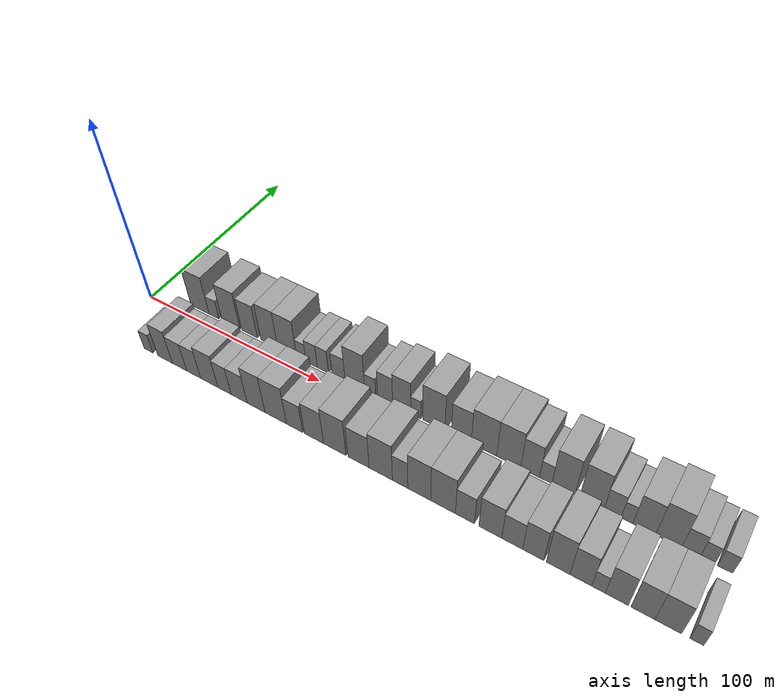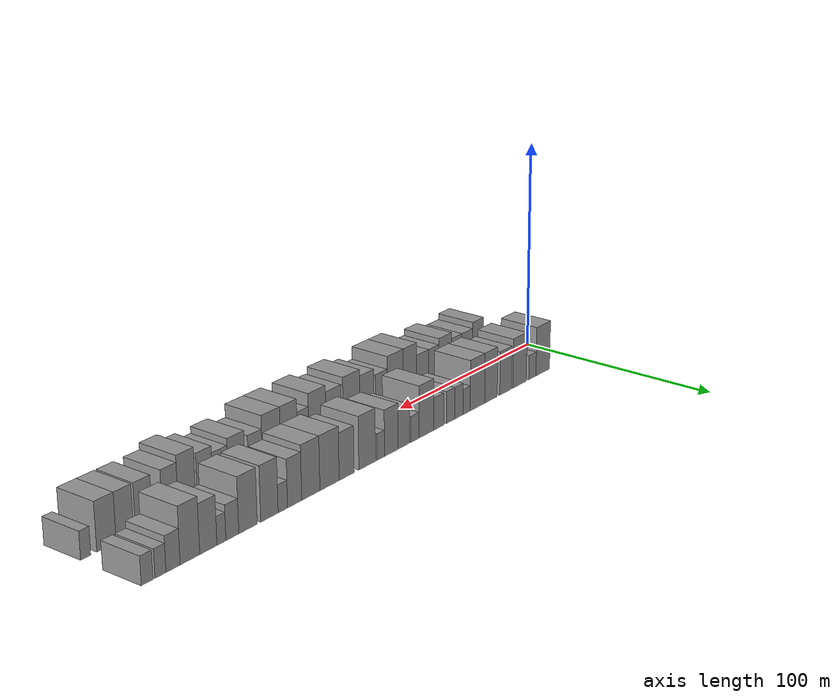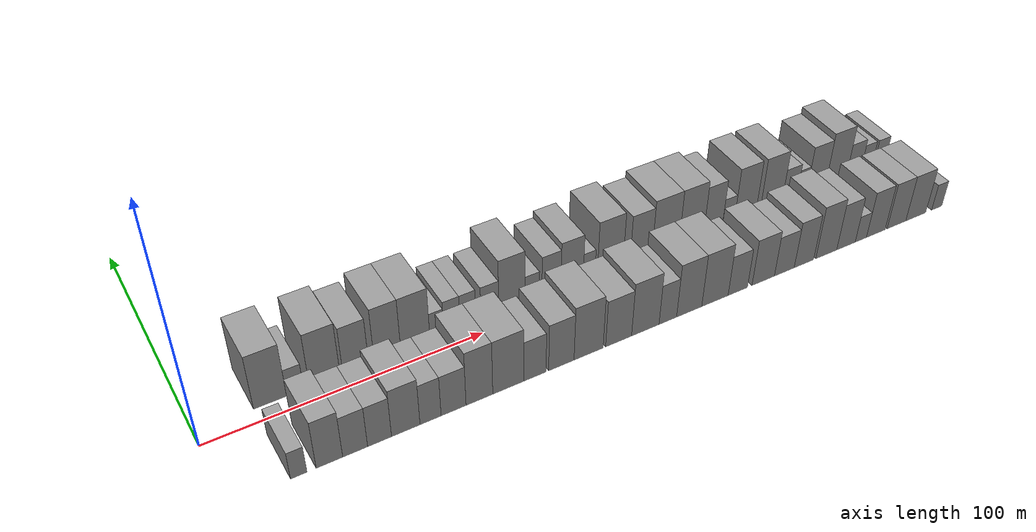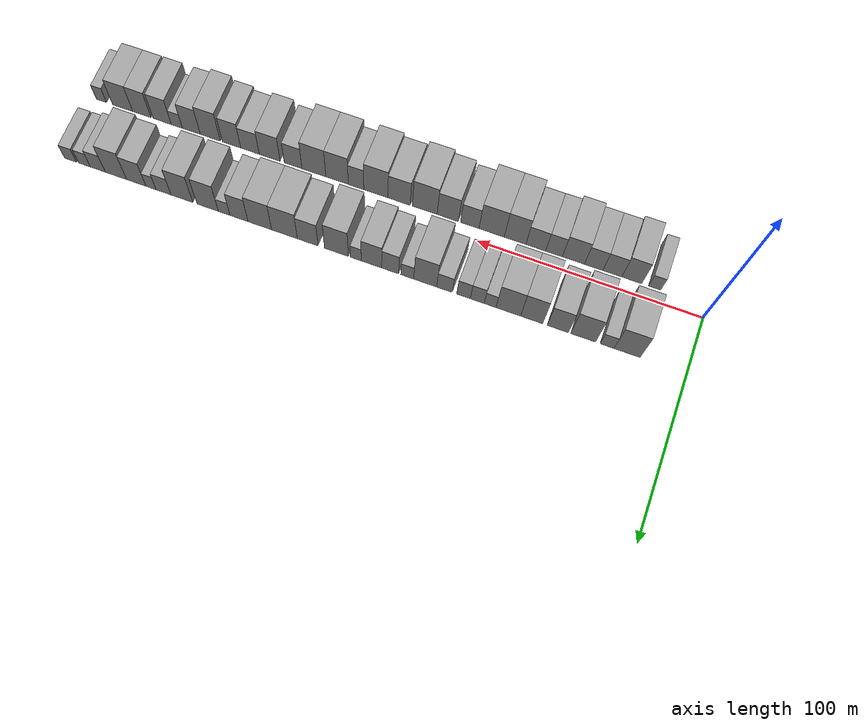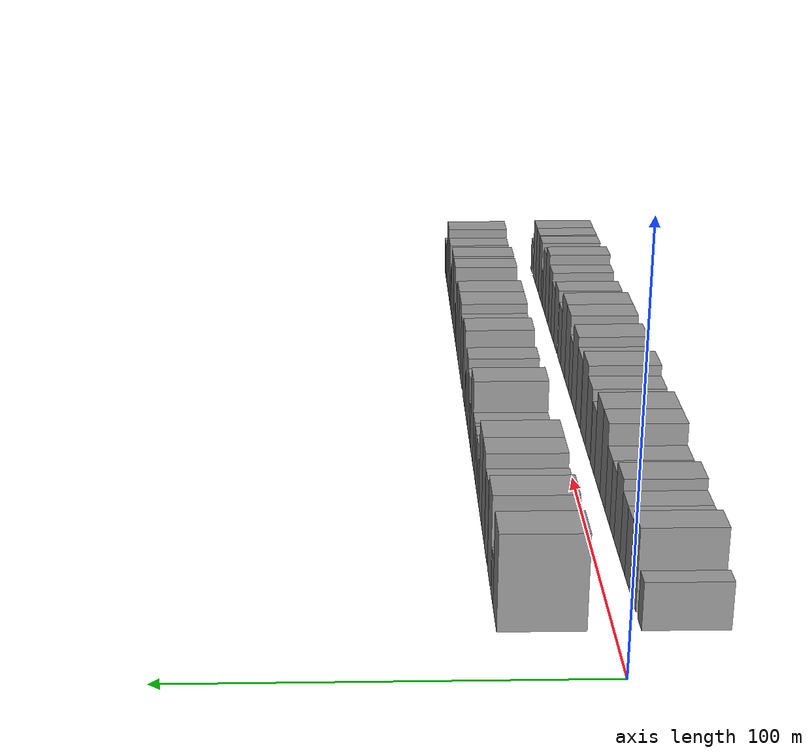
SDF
<sdf version="1.6">
 <world name="default">
  <scene>
   <sky><clouds><speed>12</speed></clouds></sky>
   <ambient>0.4 0.4 0.4 1</ambient>
   <background>0.7 0.7 0.7 1</background>
   <shadows>1</shadows>
  </scene>
  <gravity>0 0 -9.8066</gravity>
  <magnetic_field>6e-06 2.3e-05 -4.2e-05</magnetic_field>
  <physics default="0" name="default_physics" type="ode">
   <ode>
    <solver>
     <type>quick</type>
     <iters>10</iters>
     <sor>1.0</sor>
     <use_dynamic_moi_rescaling>0</use_dynamic_moi_rescaling>
    </solver>
    <constraints>
     <cfm>0</cfm>
     <erp>0.2</erp>
     <contact_max_correcting_vel>100</contact_max_correcting_vel>
     <contact_surface_layer>0.001</contact_surface_layer>
    </constraints>
   </ode>
   <max_step_size>0.004</max_step_size>
   <real_time_factor>1</real_time_factor>
   <real_time_update_rate>250</real_time_update_rate>
  </physics>
  <light name="sun" type="directional">
   <pose>0 0 10 0 0 0</pose>
   <diffuse>0.8 0.8 0.8 1</diffuse>
   <specular>0.2 0.2 0.2 1</specular>
   <attenuation>
    <range>1000</range>
    <constant>0.9</constant>
    <linear>0.01</linear>
    <quadratic>0.001</quadratic>
   </attenuation>
   <direction>-0.5 0.1 -0.9</direction>
  </light>
  <model name="building_1">
   <static>1</static>
   <pose>25.6610 16.0000 0 0.000000 0.000000 1.570796</pose>
   <link name="link">
    <pose>0 0 12.00 0 0 0</pose>
    <collision name="collision"><geometry><box><size>20.0000 11.3219 24.0000</size></box></geometry></collision>
    <visual name="visual">
     <cast_shadows>0</cast_shadows>
     <geometry><box><size>20.0000 11.3219 24.0000</size></box></geometry>
     <material>
      <script>
       <uri>model://grey_wall/materials/scripts</uri>
       <uri>model://grey_wall/materials/textures</uri>
       <name>vrc/grey_wall</name>
      </script>
     </material>
    </visual>
   </link>
  </model>
  <model name="building_2">
   <static>1</static>
   <pose>34.2821 16.0000 0 0.000000 0.000000 1.570796</pose>
   <link name="link">
    <pose>0 0 6.00 0 0 0</pose>
    <collision name="collision"><geometry><box><size>20.0000 5.9202 12.0000</size></box></geometry></collision>
    <visual name="visual">
     <cast_shadows>0</cast_shadows>
     <geometry><box><size>20.0000 5.9202 12.0000</size></box></geometry>
     <material>
      <script>
       <uri>model://grey_wall/materials/scripts</uri>
       <uri>model://grey_wall/materials/textures</uri>
       <name>vrc/grey_wall</name>
      </script>
     </material>
    </visual>
   </link>
  </model>
  <model name="building_3">
   <static>1</static>
   <pose>44.6548 16.0000 0 0.000000 0.000000 1.570796</pose>
   <link name="link">
    <pose>0 0 12.00 0 0 0</pose>
    <collision name="collision"><geometry><box><size>20.0000 10.8253 24.0000</size></box></geometry></collision>
    <visual name="visual">
     <cast_shadows>0</cast_shadows>
     <geometry><box><size>20.0000 10.8253 24.0000</size></box></geometry>
     <material>
      <script>
       <uri>model://grey_wall/materials/scripts</uri>
       <uri>model://grey_wall/materials/textures</uri>
       <name>vrc/grey_wall</name>
      </script>
     </material>
    </visual>
   </link>
  </model>
  <model name="building_4">
   <static>1</static>
   <pose>55.7100 16.0000 0 0.000000 0.000000 1.570796</pose>
   <link name="link">
    <pose>0 0 10.50 0 0 0</pose>
    <collision name="collision"><geometry><box><size>20.0000 9.2849 21.0000</size></box></geometry></collision>
    <visual name="visual">
     <cast_shadows>0</cast_shadows>
     <geometry><box><size>20.0000 9.2849 21.0000</size></box></geometry>
     <material>
      <script>
       <uri>model://grey_wall/materials/scripts</uri>
       <uri>model://grey_wall/materials/textures</uri>
       <name>vrc/grey_wall</name>
      </script>
     </material>
    </visual>
   </link>
  </model>
  <model name="building_5">
   <static>1</static>
   <pose>67.2269 16.0000 0 0.000000 0.000000 1.570796</pose>
   <link name="link">
    <pose>0 0 12.00 0 0 0</pose>
    <collision name="collision"><geometry><box><size>20.0000 9.7491 24.0000</size></box></geometry></collision>
    <visual name="visual">
     <cast_shadows>0</cast_shadows>
     <geometry><box><size>20.0000 9.7491 24.0000</size></box></geometry>
     <material>
      <script>
       <uri>model://grey_wall/materials/scripts</uri>
       <uri>model://grey_wall/materials/textures</uri>
       <name>vrc/grey_wall</name>
      </script>
     </material>
    </visual>
   </link>
  </model>
  <model name="building_6">
   <static>1</static>
   <pose>77.5490 16.0000 0 0.000000 0.000000 1.570796</pose>
   <link name="link">
    <pose>0 0 12.00 0 0 0</pose>
    <collision name="collision"><geometry><box><size>20.0000 10.8950 24.0000</size></box></geometry></collision>
    <visual name="visual">
     <cast_shadows>0</cast_shadows>
     <geometry><box><size>20.0000 10.8950 24.0000</size></box></geometry>
     <material>
      <script>
       <uri>model://grey_wall/materials/scripts</uri>
       <uri>model://grey_wall/materials/textures</uri>
       <name>vrc/grey_wall</name>
      </script>
     </material>
    </visual>
   </link>
  </model>
  <model name="building_7">
   <static>1</static>
   <pose>85.6191 16.0000 0 0.000000 0.000000 1.570796</pose>
   <link name="link">
    <pose>0 0 6.00 0 0 0</pose>
    <collision name="collision"><geometry><box><size>20.0000 5.2452 12.0000</size></box></geometry></collision>
    <visual name="visual">
     <cast_shadows>0</cast_shadows>
     <geometry><box><size>20.0000 5.2452 12.0000</size></box></geometry>
     <material>
      <script>
       <uri>model://grey_wall/materials/scripts</uri>
       <uri>model://grey_wall/materials/textures</uri>
       <name>vrc/grey_wall</name>
      </script>
     </material>
    </visual>
   </link>
  </model>
  <model name="building_8">
   <static>1</static>
   <pose>91.3401 16.0000 0 0.000000 0.000000 1.570796</pose>
   <link name="link">
    <pose>0 0 7.50 0 0 0</pose>
    <collision name="collision"><geometry><box><size>20.0000 6.1969 15.0000</size></box></geometry></collision>
    <visual name="visual">
     <cast_shadows>0</cast_shadows>
     <geometry><box><size>20.0000 6.1969 15.0000</size></box></geometry>
     <material>
      <script>
       <uri>model://grey_wall/materials/scripts</uri>
       <uri>model://grey_wall/materials/textures</uri>
       <name>vrc/grey_wall</name>
      </script>
     </material>
    </visual>
   </link>
  </model>
  <model name="building_9">
   <static>1</static>
   <pose>97.4896 16.0000 0 0.000000 0.000000 1.570796</pose>
   <link name="link">
    <pose>0 0 7.50 0 0 0</pose>
    <collision name="collision"><geometry><box><size>20.0000 6.1022 15.0000</size></box></geometry></collision>
    <visual name="visual">
     <cast_shadows>0</cast_shadows>
     <geometry><box><size>20.0000 6.1022 15.0000</size></box></geometry>
     <material>
      <script>
       <uri>model://grey_wall/materials/scripts</uri>
       <uri>model://grey_wall/materials/textures</uri>
       <name>vrc/grey_wall</name>
      </script>
     </material>
    </visual>
   </link>
  </model>
  <model name="building_10">
   <static>1</static>
   <pose>106.0273 16.0000 0 0.000000 0.000000 1.570796</pose>
   <link name="link">
    <pose>0 0 7.50 0 0 0</pose>
    <collision name="collision"><geometry><box><size>20.0000 6.9732 15.0000</size></box></geometry></collision>
    <visual name="visual">
     <cast_shadows>0</cast_shadows>
     <geometry><box><size>20.0000 6.9732 15.0000</size></box></geometry>
     <material>
      <script>
       <uri>model://grey_wall/materials/scripts</uri>
       <uri>model://grey_wall/materials/textures</uri>
       <name>vrc/grey_wall</name>
      </script>
     </material>
    </visual>
   </link>
  </model>
  <model name="building_11">
   <static>1</static>
   <pose>114.7115 16.0000 0 0.000000 0.000000 1.570796</pose>
   <link name="link">
    <pose>0 0 12.00 0 0 0</pose>
    <collision name="collision"><geometry><box><size>20.0000 10.3952 24.0000</size></box></geometry></collision>
    <visual name="visual">
     <cast_shadows>0</cast_shadows>
     <geometry><box><size>20.0000 10.3952 24.0000</size></box></geometry>
     <material>
      <script>
       <uri>model://grey_wall/materials/scripts</uri>
       <uri>model://grey_wall/materials/textures</uri>
       <name>vrc/grey_wall</name>
      </script>
     </material>
    </visual>
   </link>
  </model>
  <model name="building_12">
   <static>1</static>
   <pose>122.8133 16.0000 0 0.000000 0.000000 1.570796</pose>
   <link name="link">
    <pose>0 0 6.00 0 0 0</pose>
    <collision name="collision"><geometry><box><size>20.0000 5.8084 12.0000</size></box></geometry></collision>
    <visual name="visual">
     <cast_shadows>0</cast_shadows>
     <geometry><box><size>20.0000 5.8084 12.0000</size></box></geometry>
     <material>
      <script>
       <uri>model://grey_wall/materials/scripts</uri>
       <uri>model://grey_wall/materials/textures</uri>
       <name>vrc/grey_wall</name>
      </script>
     </material>
    </visual>
   </link>
  </model>
  <model name="building_13">
   <static>1</static>
   <pose>130.5972 16.0000 0 0.000000 0.000000 1.570796</pose>
   <link name="link">
    <pose>0 0 9.00 0 0 0</pose>
    <collision name="collision"><geometry><box><size>20.0000 7.7596 18.0000</size></box></geometry></collision>
    <visual name="visual">
     <cast_shadows>0</cast_shadows>
     <geometry><box><size>20.0000 7.7596 18.0000</size></box></geometry>
     <material>
      <script>
       <uri>model://grey_wall/materials/scripts</uri>
       <uri>model://grey_wall/materials/textures</uri>
       <name>vrc/grey_wall</name>
      </script>
     </material>
    </visual>
   </link>
  </model>
  <model name="building_14">
   <static>1</static>
   <pose>139.1012 16.0000 0 0.000000 0.000000 1.570796</pose>
   <link name="link">
    <pose>0 0 10.50 0 0 0</pose>
    <collision name="collision"><geometry><box><size>20.0000 9.2485 21.0000</size></box></geometry></collision>
    <visual name="visual">
     <cast_shadows>0</cast_shadows>
     <geometry><box><size>20.0000 9.2485 21.0000</size></box></geometry>
     <material>
      <script>
       <uri>model://grey_wall/materials/scripts</uri>
       <uri>model://grey_wall/materials/textures</uri>
       <name>vrc/grey_wall</name>
      </script>
     </material>
    </visual>
   </link>
  </model>
  <model name="building_15">
   <static>1</static>
   <pose>146.2086 16.0000 0 0.000000 0.000000 1.570796</pose>
   <link name="link">
    <pose>0 0 6.00 0 0 0</pose>
    <collision name="collision"><geometry><box><size>20.0000 4.9663 12.0000</size></box></geometry></collision>
    <visual name="visual">
     <cast_shadows>0</cast_shadows>
     <geometry><box><size>20.0000 4.9663 12.0000</size></box></geometry>
     <material>
      <script>
       <uri>model://grey_wall/materials/scripts</uri>
       <uri>model://grey_wall/materials/textures</uri>
       <name>vrc/grey_wall</name>
      </script>
     </material>
    </visual>
   </link>
  </model>
  <model name="building_16">
   <static>1</static>
   <pose>155.1598 16.0000 0 0.000000 0.000000 1.570796</pose>
   <link name="link">
    <pose>0 0 12.00 0 0 0</pose>
    <collision name="collision"><geometry><box><size>20.0000 10.9359 24.0000</size></box></geometry></collision>
    <visual name="visual">
     <cast_shadows>0</cast_shadows>
     <geometry><box><size>20.0000 10.9359 24.0000</size></box></geometry>
     <material>
      <script>
       <uri>model://grey_wall/materials/scripts</uri>
       <uri>model://grey_wall/materials/textures</uri>
       <name>vrc/grey_wall</name>
      </script>
     </material>
    </visual>
   </link>
  </model>
  <model name="building_17">
   <static>1</static>
   <pose>168.4141 16.0000 0 0.000000 0.000000 1.570796</pose>
   <link name="link">
    <pose>0 0 10.50 0 0 0</pose>
    <collision name="collision"><geometry><box><size>20.0000 9.5728 21.0000</size></box></geometry></collision>
    <visual name="visual">
     <cast_shadows>0</cast_shadows>
     <geometry><box><size>20.0000 9.5728 21.0000</size></box></geometry>
     <material>
      <script>
       <uri>model://grey_wall/materials/scripts</uri>
       <uri>model://grey_wall/materials/textures</uri>
       <name>vrc/grey_wall</name>
      </script>
     </material>
    </visual>
   </link>
  </model>
  <model name="building_18">
   <static>1</static>
   <pose>179.1956 16.0000 0 0.000000 0.000000 1.570796</pose>
   <link name="link">
    <pose>0 0 12.00 0 0 0</pose>
    <collision name="collision"><geometry><box><size>20.0000 11.9902 24.0000</size></box></geometry></collision>
    <visual name="visual">
     <cast_shadows>0</cast_shadows>
     <geometry><box><size>20.0000 11.9902 24.0000</size></box></geometry>
     <material>
      <script>
       <uri>model://grey_wall/materials/scripts</uri>
       <uri>model://grey_wall/materials/textures</uri>
       <name>vrc/grey_wall</name>
      </script>
     </material>
    </visual>
   </link>
  </model>
  <model name="building_19">
   <static>1</static>
   <pose>190.7309 16.0000 0 0.000000 0.000000 1.570796</pose>
   <link name="link">
    <pose>0 0 12.00 0 0 0</pose>
    <collision name="collision"><geometry><box><size>20.0000 11.0804 24.0000</size></box></geometry></collision>
    <visual name="visual">
     <cast_shadows>0</cast_shadows>
     <geometry><box><size>20.0000 11.0804 24.0000</size></box></geometry>
     <material>
      <script>
       <uri>model://grey_wall/materials/scripts</uri>
       <uri>model://grey_wall/materials/textures</uri>
       <name>vrc/grey_wall</name>
      </script>
     </material>
    </visual>
   </link>
  </model>
  <model name="building_20">
   <static>1</static>
   <pose>200.5182 16.0000 0 0.000000 0.000000 1.570796</pose>
   <link name="link">
    <pose>0 0 10.50 0 0 0</pose>
    <collision name="collision"><geometry><box><size>20.0000 8.4941 21.0000</size></box></geometry></collision>
    <visual name="visual">
     <cast_shadows>0</cast_shadows>
     <geometry><box><size>20.0000 8.4941 21.0000</size></box></geometry>
     <material>
      <script>
       <uri>model://grey_wall/materials/scripts</uri>
       <uri>model://grey_wall/materials/textures</uri>
       <name>vrc/grey_wall</name>
      </script>
     </material>
    </visual>
   </link>
  </model>
  <model name="building_21">
   <static>1</static>
   <pose>207.5212 16.0000 0 0.000000 0.000000 1.570796</pose>
   <link name="link">
    <pose>0 0 6.00 0 0 0</pose>
    <collision name="collision"><geometry><box><size>20.0000 5.5119 12.0000</size></box></geometry></collision>
    <visual name="visual">
     <cast_shadows>0</cast_shadows>
     <geometry><box><size>20.0000 5.5119 12.0000</size></box></geometry>
     <material>
      <script>
       <uri>model://grey_wall/materials/scripts</uri>
       <uri>model://grey_wall/materials/textures</uri>
       <name>vrc/grey_wall</name>
      </script>
     </material>
    </visual>
   </link>
  </model>
  <model name="building_22">
   <static>1</static>
   <pose>215.3232 16.0000 0 0.000000 0.000000 1.570796</pose>
   <link name="link">
    <pose>0 0 12.00 0 0 0</pose>
    <collision name="collision"><geometry><box><size>20.0000 10.0920 24.0000</size></box></geometry></collision>
    <visual name="visual">
     <cast_shadows>0</cast_shadows>
     <geometry><box><size>20.0000 10.0920 24.0000</size></box></geometry>
     <material>
      <script>
       <uri>model://grey_wall/materials/scripts</uri>
       <uri>model://grey_wall/materials/textures</uri>
       <name>vrc/grey_wall</name>
      </script>
     </material>
    </visual>
   </link>
  </model>
  <model name="building_23">
   <static>1</static>
   <pose>227.5798 16.0000 0 0.000000 0.000000 1.570796</pose>
   <link name="link">
    <pose>0 0 12.00 0 0 0</pose>
    <collision name="collision"><geometry><box><size>20.0000 10.4212 24.0000</size></box></geometry></collision>
    <visual name="visual">
     <cast_shadows>0</cast_shadows>
     <geometry><box><size>20.0000 10.4212 24.0000</size></box></geometry>
     <material>
      <script>
       <uri>model://grey_wall/materials/scripts</uri>
       <uri>model://grey_wall/materials/textures</uri>
       <name>vrc/grey_wall</name>
      </script>
     </material>
    </visual>
   </link>
  </model>
  <model name="building_24">
   <static>1</static>
   <pose>236.3757 16.0000 0 0.000000 0.000000 1.570796</pose>
   <link name="link">
    <pose>0 0 7.50 0 0 0</pose>
    <collision name="collision"><geometry><box><size>20.0000 7.1706 15.0000</size></box></geometry></collision>
    <visual name="visual">
     <cast_shadows>0</cast_shadows>
     <geometry><box><size>20.0000 7.1706 15.0000</size></box></geometry>
     <material>
      <script>
       <uri>model://grey_wall/materials/scripts</uri>
       <uri>model://grey_wall/materials/textures</uri>
       <name>vrc/grey_wall</name>
      </script>
     </material>
    </visual>
   </link>
  </model>
  <model name="building_25">
   <static>1</static>
   <pose>242.3878 16.0000 0 0.000000 0.000000 1.570796</pose>
   <link name="link">
    <pose>0 0 6.00 0 0 0</pose>
    <collision name="collision"><geometry><box><size>20.0000 4.8536 12.0000</size></box></geometry></collision>
    <visual name="visual">
     <cast_shadows>0</cast_shadows>
     <geometry><box><size>20.0000 4.8536 12.0000</size></box></geometry>
     <material>
      <script>
       <uri>model://grey_wall/materials/scripts</uri>
       <uri>model://grey_wall/materials/textures</uri>
       <name>vrc/grey_wall</name>
      </script>
     </material>
    </visual>
   </link>
  </model>
  <model name="building_26">
   <static>1</static>
   <pose>249.4661 16.0000 0 0.000000 0.000000 1.570796</pose>
   <link name="link">
    <pose>0 0 10.50 0 0 0</pose>
    <collision name="collision"><geometry><box><size>20.0000 9.3031 21.0000</size></box></geometry></collision>
    <visual name="visual">
     <cast_shadows>0</cast_shadows>
     <geometry><box><size>20.0000 9.3031 21.0000</size></box></geometry>
     <material>
      <script>
       <uri>model://grey_wall/materials/scripts</uri>
       <uri>model://grey_wall/materials/textures</uri>
       <name>vrc/grey_wall</name>
      </script>
     </material>
    </visual>
   </link>
  </model>
  <model name="building_27">
   <static>1</static>
   <pose>259.2833 16.0000 0 0.000000 0.000000 1.570796</pose>
   <link name="link">
    <pose>0 0 12.00 0 0 0</pose>
    <collision name="collision"><geometry><box><size>20.0000 10.3313 24.0000</size></box></geometry></collision>
    <visual name="visual">
     <cast_shadows>0</cast_shadows>
     <geometry><box><size>20.0000 10.3313 24.0000</size></box></geometry>
     <material>
      <script>
       <uri>model://grey_wall/materials/scripts</uri>
       <uri>model://grey_wall/materials/textures</uri>
       <name>vrc/grey_wall</name>
      </script>
     </material>
    </visual>
   </link>
  </model>
  <model name="building_28">
   <static>1</static>
   <pose>268.1160 16.0000 0 0.000000 0.000000 1.570796</pose>
   <link name="link">
    <pose>0 0 7.50 0 0 0</pose>
    <collision name="collision"><geometry><box><size>20.0000 7.3340 15.0000</size></box></geometry></collision>
    <visual name="visual">
     <cast_shadows>0</cast_shadows>
     <geometry><box><size>20.0000 7.3340 15.0000</size></box></geometry>
     <material>
      <script>
       <uri>model://grey_wall/materials/scripts</uri>
       <uri>model://grey_wall/materials/textures</uri>
       <name>vrc/grey_wall</name>
      </script>
     </material>
    </visual>
   </link>
  </model>
  <model name="building_29">
   <static>1</static>
   <pose>274.6098 16.0000 0 0.000000 0.000000 1.570796</pose>
   <link name="link">
    <pose>0 0 6.00 0 0 0</pose>
    <collision name="collision"><geometry><box><size>20.0000 5.6537 12.0000</size></box></geometry></collision>
    <visual name="visual">
     <cast_shadows>0</cast_shadows>
     <geometry><box><size>20.0000 5.6537 12.0000</size></box></geometry>
     <material>
      <script>
       <uri>model://grey_wall/materials/scripts</uri>
       <uri>model://grey_wall/materials/textures</uri>
       <name>vrc/grey_wall</name>
      </script>
     </material>
    </visual>
   </link>
  </model>
  <model name="building_30">
   <static>1</static>
   <pose>281.3826 16.0000 0 0.000000 0.000000 1.570796</pose>
   <link name="link">
    <pose>0 0 6.00 0 0 0</pose>
    <collision name="collision"><geometry><box><size>20.0000 5.8918 12.0000</size></box></geometry></collision>
    <visual name="visual">
     <cast_shadows>0</cast_shadows>
     <geometry><box><size>20.0000 5.8918 12.0000</size></box></geometry>
     <material>
      <script>
       <uri>model://grey_wall/materials/scripts</uri>
       <uri>model://grey_wall/materials/textures</uri>
       <name>vrc/grey_wall</name>
      </script>
     </material>
    </visual>
   </link>
  </model>
  <model name="building_31">
   <static>1</static>
   <pose>22.6909 -16.0000 0 0.000000 0.000000 1.570796</pose>
   <link name="link">
    <pose>0 0 6.00 0 0 0</pose>
    <collision name="collision"><geometry><box><size>20.0000 5.3817 12.0000</size></box></geometry></collision>
    <visual name="visual">
     <cast_shadows>0</cast_shadows>
     <geometry><box><size>20.0000 5.3817 12.0000</size></box></geometry>
     <material>
      <script>
       <uri>model://grey_wall/materials/scripts</uri>
       <uri>model://grey_wall/materials/textures</uri>
       <name>vrc/grey_wall</name>
      </script>
     </material>
    </visual>
   </link>
  </model>
  <model name="building_32">
   <static>1</static>
   <pose>32.7923 -16.0000 0 0.000000 0.000000 1.570796</pose>
   <link name="link">
    <pose>0 0 10.50 0 0 0</pose>
    <collision name="collision"><geometry><box><size>20.0000 8.8211 21.0000</size></box></geometry></collision>
    <visual name="visual">
     <cast_shadows>0</cast_shadows>
     <geometry><box><size>20.0000 8.8211 21.0000</size></box></geometry>
     <material>
      <script>
       <uri>model://grey_wall/materials/scripts</uri>
       <uri>model://grey_wall/materials/textures</uri>
       <name>vrc/grey_wall</name>
      </script>
     </material>
    </visual>
   </link>
  </model>
  <model name="building_33">
   <static>1</static>
   <pose>41.4020 -16.0000 0 0.000000 0.000000 1.570796</pose>
   <link name="link">
    <pose>0 0 9.00 0 0 0</pose>
    <collision name="collision"><geometry><box><size>20.0000 8.3981 18.0000</size></box></geometry></collision>
    <visual name="visual">
     <cast_shadows>0</cast_shadows>
     <geometry><box><size>20.0000 8.3981 18.0000</size></box></geometry>
     <material>
      <script>
       <uri>model://grey_wall/materials/scripts</uri>
       <uri>model://grey_wall/materials/textures</uri>
       <name>vrc/grey_wall</name>
      </script>
     </material>
    </visual>
   </link>
  </model>
  <model name="building_34">
   <static>1</static>
   <pose>49.7030 -16.0000 0 0.000000 0.000000 1.570796</pose>
   <link name="link">
    <pose>0 0 9.00 0 0 0</pose>
    <collision name="collision"><geometry><box><size>20.0000 8.2039 18.0000</size></box></geometry></collision>
    <visual name="visual">
     <cast_shadows>0</cast_shadows>
     <geometry><box><size>20.0000 8.2039 18.0000</size></box></geometry>
     <material>
      <script>
       <uri>model://grey_wall/materials/scripts</uri>
       <uri>model://grey_wall/materials/textures</uri>
       <name>vrc/grey_wall</name>
      </script>
     </material>
    </visual>
   </link>
  </model>
  <model name="building_35">
   <static>1</static>
   <pose>58.7576 -16.0000 0 0.000000 0.000000 1.570796</pose>
   <link name="link">
    <pose>0 0 10.50 0 0 0</pose>
    <collision name="collision"><geometry><box><size>20.0000 9.9053 21.0000</size></box></geometry></collision>
    <visual name="visual">
     <cast_shadows>0</cast_shadows>
     <geometry><box><size>20.0000 9.9053 21.0000</size></box></geometry>
     <material>
      <script>
       <uri>model://grey_wall/materials/scripts</uri>
       <uri>model://grey_wall/materials/textures</uri>
       <name>vrc/grey_wall</name>
      </script>
     </material>
    </visual>
   </link>
  </model>
  <model name="building_36">
   <static>1</static>
   <pose>67.4397 -16.0000 0 0.000000 0.000000 1.570796</pose>
   <link name="link">
    <pose>0 0 9.00 0 0 0</pose>
    <collision name="collision"><geometry><box><size>20.0000 7.4589 18.0000</size></box></geometry></collision>
    <visual name="visual">
     <cast_shadows>0</cast_shadows>
     <geometry><box><size>20.0000 7.4589 18.0000</size></box></geometry>
     <material>
      <script>
       <uri>model://grey_wall/materials/scripts</uri>
       <uri>model://grey_wall/materials/textures</uri>
       <name>vrc/grey_wall</name>
      </script>
     </material>
    </visual>
   </link>
  </model>
  <model name="building_37">
   <static>1</static>
   <pose>75.6421 -16.0000 0 0.000000 0.000000 1.570796</pose>
   <link name="link">
    <pose>0 0 9.00 0 0 0</pose>
    <collision name="collision"><geometry><box><size>20.0000 8.9460 18.0000</size></box></geometry></collision>
    <visual name="visual">
     <cast_shadows>0</cast_shadows>
     <geometry><box><size>20.0000 8.9460 18.0000</size></box></geometry>
     <material>
      <script>
       <uri>model://grey_wall/materials/scripts</uri>
       <uri>model://grey_wall/materials/textures</uri>
       <name>vrc/grey_wall</name>
      </script>
     </material>
    </visual>
   </link>
  </model>
  <model name="building_38">
   <static>1</static>
   <pose>84.9983 -16.0000 0 0.000000 0.000000 1.570796</pose>
   <link name="link">
    <pose>0 0 12.00 0 0 0</pose>
    <collision name="collision"><geometry><box><size>20.0000 9.7664 24.0000</size></box></geometry></collision>
    <visual name="visual">
     <cast_shadows>0</cast_shadows>
     <geometry><box><size>20.0000 9.7664 24.0000</size></box></geometry>
     <material>
      <script>
       <uri>model://grey_wall/materials/scripts</uri>
       <uri>model://grey_wall/materials/textures</uri>
       <name>vrc/grey_wall</name>
      </script>
     </material>
    </visual>
   </link>
  </model>
  <model name="building_39">
   <static>1</static>
   <pose>95.6420 -16.0000 0 0.000000 0.000000 1.570796</pose>
   <link name="link">
    <pose>0 0 12.00 0 0 0</pose>
    <collision name="collision"><geometry><box><size>20.0000 11.5209 24.0000</size></box></geometry></collision>
    <visual name="visual">
     <cast_shadows>0</cast_shadows>
     <geometry><box><size>20.0000 11.5209 24.0000</size></box></geometry>
     <material>
      <script>
       <uri>model://grey_wall/materials/scripts</uri>
       <uri>model://grey_wall/materials/textures</uri>
       <name>vrc/grey_wall</name>
      </script>
     </material>
    </visual>
   </link>
  </model>
  <model name="building_40">
   <static>1</static>
   <pose>105.6241 -16.0000 0 0.000000 0.000000 1.570796</pose>
   <link name="link">
    <pose>0 0 9.00 0 0 0</pose>
    <collision name="collision"><geometry><box><size>20.0000 8.4432 18.0000</size></box></geometry></collision>
    <visual name="visual">
     <cast_shadows>0</cast_shadows>
     <geometry><box><size>20.0000 8.4432 18.0000</size></box></geometry>
     <material>
      <script>
       <uri>model://grey_wall/materials/scripts</uri>
       <uri>model://grey_wall/materials/textures</uri>
       <name>vrc/grey_wall</name>
      </script>
     </material>
    </visual>
   </link>
  </model>
  <model name="building_41">
   <static>1</static>
   <pose>115.7392 -16.0000 0 0.000000 0.000000 1.570796</pose>
   <link name="link">
    <pose>0 0 10.50 0 0 0</pose>
    <collision name="collision"><geometry><box><size>20.0000 9.7871 21.0000</size></box></geometry></collision>
    <visual name="visual">
     <cast_shadows>0</cast_shadows>
     <geometry><box><size>20.0000 9.7871 21.0000</size></box></geometry>
     <material>
      <script>
       <uri>model://grey_wall/materials/scripts</uri>
       <uri>model://grey_wall/materials/textures</uri>
       <name>vrc/grey_wall</name>
      </script>
     </material>
    </visual>
   </link>
  </model>
  <model name="building_42">
   <static>1</static>
   <pose>126.3459 -16.0000 0 0.000000 0.000000 1.570796</pose>
   <link name="link">
    <pose>0 0 12.00 0 0 0</pose>
    <collision name="collision"><geometry><box><size>20.0000 11.4262 24.0000</size></box></geometry></collision>
    <visual name="visual">
     <cast_shadows>0</cast_shadows>
     <geometry><box><size>20.0000 11.4262 24.0000</size></box></geometry>
     <material>
      <script>
       <uri>model://grey_wall/materials/scripts</uri>
       <uri>model://grey_wall/materials/textures</uri>
       <name>vrc/grey_wall</name>
      </script>
     </material>
    </visual>
   </link>
  </model>
  <model name="building_43">
   <static>1</static>
   <pose>138.2628 -16.0000 0 0.000000 0.000000 1.570796</pose>
   <link name="link">
    <pose>0 0 10.50 0 0 0</pose>
    <collision name="collision"><geometry><box><size>20.0000 10.4076 21.0000</size></box></geometry></collision>
    <visual name="visual">
     <cast_shadows>0</cast_shadows>
     <geometry><box><size>20.0000 10.4076 21.0000</size></box></geometry>
     <material>
      <script>
       <uri>model://grey_wall/materials/scripts</uri>
       <uri>model://grey_wall/materials/textures</uri>
       <name>vrc/grey_wall</name>
      </script>
     </material>
    </visual>
   </link>
  </model>
  <model name="building_44">
   <static>1</static>
   <pose>149.0768 -16.0000 0 0.000000 0.000000 1.570796</pose>
   <link name="link">
    <pose>0 0 12.00 0 0 0</pose>
    <collision name="collision"><geometry><box><size>20.0000 11.2204 24.0000</size></box></geometry></collision>
    <visual name="visual">
     <cast_shadows>0</cast_shadows>
     <geometry><box><size>20.0000 11.2204 24.0000</size></box></geometry>
     <material>
      <script>
       <uri>model://grey_wall/materials/scripts</uri>
       <uri>model://grey_wall/materials/textures</uri>
       <name>vrc/grey_wall</name>
      </script>
     </material>
    </visual>
   </link>
  </model>
  <model name="building_45">
   <static>1</static>
   <pose>158.3275 -16.0000 0 0.000000 0.000000 1.570796</pose>
   <link name="link">
    <pose>0 0 9.00 0 0 0</pose>
    <collision name="collision"><geometry><box><size>20.0000 7.2811 18.0000</size></box></geometry></collision>
    <visual name="visual">
     <cast_shadows>0</cast_shadows>
     <geometry><box><size>20.0000 7.2811 18.0000</size></box></geometry>
     <material>
      <script>
       <uri>model://grey_wall/materials/scripts</uri>
       <uri>model://grey_wall/materials/textures</uri>
       <name>vrc/grey_wall</name>
      </script>
     </material>
    </visual>
   </link>
  </model>
  <model name="building_46">
   <static>1</static>
   <pose>167.2682 -16.0000 0 0.000000 0.000000 1.570796</pose>
   <link name="link">
    <pose>0 0 12.00 0 0 0</pose>
    <collision name="collision"><geometry><box><size>20.0000 10.6003 24.0000</size></box></geometry></collision>
    <visual name="visual">
     <cast_shadows>0</cast_shadows>
     <geometry><box><size>20.0000 10.6003 24.0000</size></box></geometry>
     <material>
      <script>
       <uri>model://grey_wall/materials/scripts</uri>
       <uri>model://grey_wall/materials/textures</uri>
       <name>vrc/grey_wall</name>
      </script>
     </material>
    </visual>
   </link>
  </model>
  <model name="building_47">
   <static>1</static>
   <pose>178.2266 -16.0000 0 0.000000 0.000000 1.570796</pose>
   <link name="link">
    <pose>0 0 12.00 0 0 0</pose>
    <collision name="collision"><geometry><box><size>20.0000 11.3165 24.0000</size></box></geometry></collision>
    <visual name="visual">
     <cast_shadows>0</cast_shadows>
     <geometry><box><size>20.0000 11.3165 24.0000</size></box></geometry>
     <material>
      <script>
       <uri>model://grey_wall/materials/scripts</uri>
       <uri>model://grey_wall/materials/textures</uri>
       <name>vrc/grey_wall</name>
      </script>
     </material>
    </visual>
   </link>
  </model>
  <model name="building_48">
   <static>1</static>
   <pose>188.1027 -16.0000 0 0.000000 0.000000 1.570796</pose>
   <link name="link">
    <pose>0 0 9.00 0 0 0</pose>
    <collision name="collision"><geometry><box><size>20.0000 8.4357 18.0000</size></box></geometry></collision>
    <visual name="visual">
     <cast_shadows>0</cast_shadows>
     <geometry><box><size>20.0000 8.4357 18.0000</size></box></geometry>
     <material>
      <script>
       <uri>model://grey_wall/materials/scripts</uri>
       <uri>model://grey_wall/materials/textures</uri>
       <name>vrc/grey_wall</name>
      </script>
     </material>
    </visual>
   </link>
  </model>
  <model name="building_49">
   <static>1</static>
   <pose>199.2969 -16.0000 0 0.000000 0.000000 1.570796</pose>
   <link name="link">
    <pose>0 0 10.50 0 0 0</pose>
    <collision name="collision"><geometry><box><size>20.0000 9.9527 21.0000</size></box></geometry></collision>
    <visual name="visual">
     <cast_shadows>0</cast_shadows>
     <geometry><box><size>20.0000 9.9527 21.0000</size></box></geometry>
     <material>
      <script>
       <uri>model://grey_wall/materials/scripts</uri>
       <uri>model://grey_wall/materials/textures</uri>
       <name>vrc/grey_wall</name>
      </script>
     </material>
    </visual>
   </link>
  </model>
  <model name="building_50">
   <static>1</static>
   <pose>208.7404 -16.0000 0 0.000000 0.000000 1.570796</pose>
   <link name="link">
    <pose>0 0 9.00 0 0 0</pose>
    <collision name="collision"><geometry><box><size>20.0000 8.9342 18.0000</size></box></geometry></collision>
    <visual name="visual">
     <cast_shadows>0</cast_shadows>
     <geometry><box><size>20.0000 8.9342 18.0000</size></box></geometry>
     <material>
      <script>
       <uri>model://grey_wall/materials/scripts</uri>
       <uri>model://grey_wall/materials/textures</uri>
       <name>vrc/grey_wall</name>
      </script>
     </material>
    </visual>
   </link>
  </model>
  <model name="building_51">
   <static>1</static>
   <pose>217.6510 -16.0000 0 0.000000 0.000000 1.570796</pose>
   <link name="link">
    <pose>0 0 10.50 0 0 0</pose>
    <collision name="collision"><geometry><box><size>20.0000 8.8870 21.0000</size></box></geometry></collision>
    <visual name="visual">
     <cast_shadows>0</cast_shadows>
     <geometry><box><size>20.0000 8.8870 21.0000</size></box></geometry>
     <material>
      <script>
       <uri>model://grey_wall/materials/scripts</uri>
       <uri>model://grey_wall/materials/textures</uri>
       <name>vrc/grey_wall</name>
      </script>
     </material>
    </visual>
   </link>
  </model>
  <model name="building_52">
   <static>1</static>
   <pose>227.9590 -16.0000 0 0.000000 0.000000 1.570796</pose>
   <link name="link">
    <pose>0 0 12.00 0 0 0</pose>
    <collision name="collision"><geometry><box><size>20.0000 9.7291 24.0000</size></box></geometry></collision>
    <visual name="visual">
     <cast_shadows>0</cast_shadows>
     <geometry><box><size>20.0000 9.7291 24.0000</size></box></geometry>
     <material>
      <script>
       <uri>model://grey_wall/materials/scripts</uri>
       <uri>model://grey_wall/materials/textures</uri>
       <name>vrc/grey_wall</name>
      </script>
     </material>
    </visual>
   </link>
  </model>
  <model name="building_53">
   <static>1</static>
   <pose>237.1881 -16.0000 0 0.000000 0.000000 1.570796</pose>
   <link name="link">
    <pose>0 0 10.50 0 0 0</pose>
    <collision name="collision"><geometry><box><size>20.0000 8.7290 21.0000</size></box></geometry></collision>
    <visual name="visual">
     <cast_shadows>0</cast_shadows>
     <geometry><box><size>20.0000 8.7290 21.0000</size></box></geometry>
     <material>
      <script>
       <uri>model://grey_wall/materials/scripts</uri>
       <uri>model://grey_wall/materials/textures</uri>
       <name>vrc/grey_wall</name>
      </script>
     </material>
    </visual>
   </link>
  </model>
  <model name="building_54">
   <static>1</static>
   <pose>244.2414 -16.0000 0 0.000000 0.000000 1.570796</pose>
   <link name="link">
    <pose>0 0 6.00 0 0 0</pose>
    <collision name="collision"><geometry><box><size>20.0000 5.3777 12.0000</size></box></geometry></collision>
    <visual name="visual">
     <cast_shadows>0</cast_shadows>
     <geometry><box><size>20.0000 5.3777 12.0000</size></box></geometry>
     <material>
      <script>
       <uri>model://grey_wall/materials/scripts</uri>
       <uri>model://grey_wall/materials/textures</uri>
       <name>vrc/grey_wall</name>
      </script>
     </material>
    </visual>
   </link>
  </model>
  <model name="building_55">
   <static>1</static>
   <pose>251.4212 -16.0000 0 0.000000 0.000000 1.570796</pose>
   <link name="link">
    <pose>0 0 10.50 0 0 0</pose>
    <collision name="collision"><geometry><box><size>20.0000 8.9819 21.0000</size></box></geometry></collision>
    <visual name="visual">
     <cast_shadows>0</cast_shadows>
     <geometry><box><size>20.0000 8.9819 21.0000</size></box></geometry>
     <material>
      <script>
       <uri>model://grey_wall/materials/scripts</uri>
       <uri>model://grey_wall/materials/textures</uri>
       <name>vrc/grey_wall</name>
      </script>
     </material>
    </visual>
   </link>
  </model>
  <model name="building_56">
   <static>1</static>
   <pose>261.4788 -16.0000 0 0.000000 0.000000 1.570796</pose>
   <link name="link">
    <pose>0 0 10.50 0 0 0</pose>
    <collision name="collision"><geometry><box><size>20.0000 9.1332 21.0000</size></box></geometry></collision>
    <visual name="visual">
     <cast_shadows>0</cast_shadows>
     <geometry><box><size>20.0000 9.1332 21.0000</size></box></geometry>
     <material>
      <script>
       <uri>model://grey_wall/materials/scripts</uri>
       <uri>model://grey_wall/materials/textures</uri>
       <name>vrc/grey_wall</name>
      </script>
     </material>
    </visual>
   </link>
  </model>
  <model name="building_57">
   <static>1</static>
   <pose>271.0019 -16.0000 0 0.000000 0.000000 1.570796</pose>
   <link name="link">
    <pose>0 0 10.50 0 0 0</pose>
    <collision name="collision"><geometry><box><size>20.0000 9.9130 21.0000</size></box></geometry></collision>
    <visual name="visual">
     <cast_shadows>0</cast_shadows>
     <geometry><box><size>20.0000 9.9130 21.0000</size></box></geometry>
     <material>
      <script>
       <uri>model://grey_wall/materials/scripts</uri>
       <uri>model://grey_wall/materials/textures</uri>
       <name>vrc/grey_wall</name>
      </script>
     </material>
    </visual>
   </link>
  </model>
  <model name="building_58">
   <static>1</static>
   <pose>281.5092 -16.0000 0 0.000000 0.000000 1.570796</pose>
   <link name="link">
    <pose>0 0 6.00 0 0 0</pose>
    <collision name="collision"><geometry><box><size>20.0000 5.1017 12.0000</size></box></geometry></collision>
    <visual name="visual">
     <cast_shadows>0</cast_shadows>
     <geometry><box><size>20.0000 5.1017 12.0000</size></box></geometry>
     <material>
      <script>
       <uri>model://grey_wall/materials/scripts</uri>
       <uri>model://grey_wall/materials/textures</uri>
       <name>vrc/grey_wall</name>
      </script>
     </material>
    </visual>
   </link>
  </model>
 </world>
</sdf>
